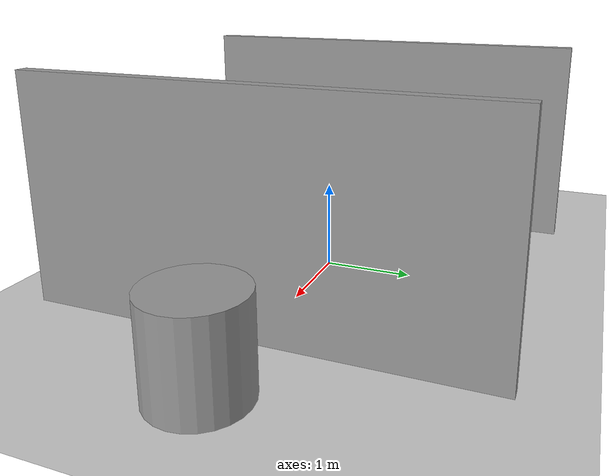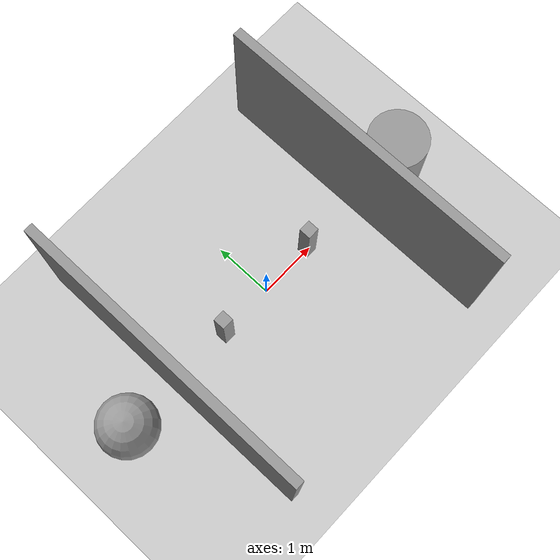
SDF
<sdf version="1.6">
 <world name="default">
  <light name="sun" type="directional">
   <pose>0 0 10 0 -0 0</pose>
   <diffuse>0.8 0.8 0.8 1</diffuse>
   <specular>0.1 0.1 0.1 1</specular>
   <attenuation>
    <range>1000</range>
    <constant>0.9</constant>
    <linear>0.01</linear>
    <quadratic>0.001</quadratic>
   </attenuation>
   <direction>-0.5 0.5 -1</direction>
  </light>
  <model name="ground_plane">
   <static>1</static>
   <link name="link">
    <collision name="collision">
     <geometry><plane><normal>0 0 1</normal><size>100 100</size></plane></geometry>
     <surface><friction><ode><mu>100</mu><mu2>50</mu2></ode></friction></surface>
    </collision>
    <visual name="visual">
     <cast_shadows>0</cast_shadows>
     <geometry><plane><normal>0 0 1</normal><size>100 100</size></plane></geometry>
     <material>
      <script><uri>file://media/materials/scripts/gazebo.material</uri><name>Gazebo/Grey</name></script>
     </material>
    </visual>
   </link>
  </model>
  <gravity>0 0 -9.8</gravity>
  <magnetic_field>6e-06 2.3e-05 -4.2e-05</magnetic_field>
  <atmosphere type="adiabatic"/>
  <physics name="default_physics" default="0" type="ode">
   <max_step_size>0.001</max_step_size>
   <real_time_factor>1</real_time_factor>
   <real_time_update_rate>1000</real_time_update_rate>
  </physics>
  <scene><ambient>0.4 0.4 0.4 1</ambient><background>0.7 0.7 0.7 1</background><shadows>1</shadows></scene>
  <spherical_coordinates>
   <surface_model>EARTH_WGS84</surface_model>
   <latitude_deg>0</latitude_deg>
   <longitude_deg>0</longitude_deg>
   <elevation>0</elevation>
   <heading_deg>0</heading_deg>
  </spherical_coordinates>
  <model name="kinects_box">
   <link name="link">
    <inertial>
     <mass>1</mass>
     <inertia>
      <ixx>0.166667</ixx>
      <ixy>0</ixy>
      <ixz>0</ixz>
      <iyy>0.166667</iyy>
      <iyz>0</iyz>
      <izz>0.166667</izz>
     </inertia>
    </inertial>
    <visual name="visual">
     <geometry><box><size>0.2 0.2 1</size></box></geometry>
     <material>
      <script><name>Gazebo/Grey</name><uri>file://media/materials/scripts/gazebo.material</uri></script>
      <ambient>0.3 0.3 0.3 1</ambient>
      <diffuse>0.7 0.7 0.7 1</diffuse>
      <specular>0.01 0.01 0.01 1</specular>
      <emissive>0 0 0 1</emissive>
      <shader type="vertex"><normal_map>__default__</normal_map></shader>
     </material>
    </visual>
    <collision name="collision">
     <geometry><box><size>0.2 0.2 1</size></box></geometry>
     <surface>
      <friction>
       <ode><mu>1</mu><mu2>1</mu2><fdir1>0 0 0</fdir1><slip1>0</slip1><slip2>0</slip2></ode>
       <torsional>
        <coefficient>1</coefficient>
        <patch_radius>0</patch_radius>
        <surface_radius>0</surface_radius>
        <use_patch_radius>1</use_patch_radius>
        <ode><slip>0</slip></ode>
       </torsional>
      </friction>
      <bounce><restitution_coefficient>0</restitution_coefficient><threshold>1e+06</threshold></bounce>
      <contact>
       <collide_without_contact>0</collide_without_contact>
       <collide_without_contact_bitmask>1</collide_without_contact_bitmask>
       <collide_bitmask>1</collide_bitmask>
       <ode>
        <soft_cfm>0</soft_cfm>
        <soft_erp>0.2</soft_erp>
        <kp>1e+13</kp>
        <kd>1</kd>
        <max_vel>0.01</max_vel>
        <min_depth>0</min_depth>
       </ode>
       <bullet>
        <split_impulse>1</split_impulse>
        <split_impulse_penetration_threshold>-0.01</split_impulse_penetration_threshold>
        <soft_cfm>0</soft_cfm>
        <soft_erp>0.2</soft_erp>
        <kp>1e+13</kp>
        <kd>1</kd>
       </bullet>
      </contact>
     </surface>
    </collision>
   </link>
   <static>0</static>
   <pose>-0.94327 -0.011746 0.499108 -2.5e-05 -3.7e-05 0.000113</pose>
  </model>
  <model name="kinects_box_0">
   <link name="link">
    <inertial>
     <mass>1</mass>
     <inertia>
      <ixx>0.166667</ixx>
      <ixy>0</ixy>
      <ixz>0</ixz>
      <iyy>0.166667</iyy>
      <iyz>0</iyz>
      <izz>0.166667</izz>
     </inertia>
    </inertial>
    <visual name="visual">
     <geometry><box><size>0.2 0.2 1</size></box></geometry>
     <material>
      <script><name>Gazebo/Grey</name><uri>file://media/materials/scripts/gazebo.material</uri></script>
      <ambient>0.3 0.3 0.3 1</ambient>
      <diffuse>0.7 0.7 0.7 1</diffuse>
      <specular>0.01 0.01 0.01 1</specular>
      <emissive>0 0 0 1</emissive>
      <shader type="vertex"><normal_map>__default__</normal_map></shader>
     </material>
    </visual>
    <collision name="collision">
     <geometry><box><size>0.2 0.2 1</size></box></geometry>
     <surface>
      <friction>
       <ode><mu>1</mu><mu2>1</mu2><fdir1>0 0 0</fdir1><slip1>0</slip1><slip2>0</slip2></ode>
       <torsional>
        <coefficient>1</coefficient>
        <patch_radius>0</patch_radius>
        <surface_radius>0</surface_radius>
        <use_patch_radius>1</use_patch_radius>
        <ode><slip>0</slip></ode>
       </torsional>
      </friction>
      <bounce><restitution_coefficient>0</restitution_coefficient><threshold>1e+06</threshold></bounce>
      <contact>
       <collide_without_contact>0</collide_without_contact>
       <collide_without_contact_bitmask>1</collide_without_contact_bitmask>
       <collide_bitmask>1</collide_bitmask>
       <ode>
        <soft_cfm>0</soft_cfm>
        <soft_erp>0.2</soft_erp>
        <kp>1e+13</kp>
        <kd>1</kd>
        <max_vel>0.01</max_vel>
        <min_depth>0</min_depth>
       </ode>
       <bullet>
        <split_impulse>1</split_impulse>
        <split_impulse_penetration_threshold>-0.01</split_impulse_penetration_threshold>
        <soft_cfm>0</soft_cfm>
        <soft_erp>0.2</soft_erp>
        <kp>1e+13</kp>
        <kd>1</kd>
       </bullet>
      </contact>
     </surface>
    </collision>
   </link>
   <static>0</static>
   <pose>0.950957 0.012329 0.5 -2e-06 -0 5.9e-05</pose>
  </model>
  <model name="unit_sphere_0">
   <pose>-3 0 0.5 0 -0 0</pose>
   <link name="link">
    <inertial>
     <mass>1</mass>
     <inertia><ixx>0.1</ixx><ixy>0</ixy><ixz>0</ixz><iyy>0.1</iyy><iyz>0</iyz><izz>0.1</izz></inertia>
    </inertial>
    <collision name="collision"><geometry><sphere><radius>0.5</radius></sphere></geometry></collision>
    <visual name="visual">
     <geometry><sphere><radius>0.5</radius></sphere></geometry>
     <material>
      <script><name>Gazebo/Grey</name><uri>file://media/materials/scripts/gazebo.material</uri></script>
     </material>
    </visual>
   </link>
  </model>
  <model name="unit_cylinder_0">
   <pose>3 1e-06 0.499992 -3e-06 3e-06 0</pose>
   <link name="link">
    <inertial>
     <mass>1</mass>
     <inertia><ixx>0.145833</ixx><ixy>0</ixy><ixz>0</ixz><iyy>0.145833</iyy><iyz>0</iyz><izz>0.125</izz></inertia>
    </inertial>
    <collision name="collision">
     <geometry><cylinder><radius>0.5</radius><length>1</length></cylinder></geometry>
    </collision>
    <visual name="visual">
     <geometry><cylinder><radius>0.5</radius><length>1</length></cylinder></geometry>
     <material>
      <script><name>Gazebo/Grey</name><uri>file://media/materials/scripts/gazebo.material</uri></script>
     </material>
    </visual>
   </link>
  </model>
  <model name="test">
   <pose>-0.001693 0 0.022218 0 -0 0</pose>
   <link name="Wall_0">
    <collision name="Wall_0_Collision">
     <geometry><box><size>5 0.15 2.5</size></box></geometry>
     <pose>0 0 1.25 0 -0 0</pose>
    </collision>
    <visual name="Wall_0_Visual">
     <pose>0 0 1.25 0 -0 0</pose>
     <geometry><box><size>5 0.15 2.5</size></box></geometry>
     <material>
      <script><uri>file://media/materials/scripts/gazebo.material</uri><name>Gazebo/Grey</name></script>
      <ambient>1 1 1 1</ambient>
     </material>
    </visual>
    <pose>2.0373 -0.008913 0 0 0 -1.5708</pose>
   </link>
   <link name="Wall_3">
    <collision name="Wall_3_Collision">
     <geometry><box><size>5 0.15 2.5</size></box></geometry>
     <pose>0 0 1.25 0 -0 0</pose>
    </collision>
    <visual name="Wall_3_Visual">
     <pose>0 0 1.25 0 -0 0</pose>
     <geometry><box><size>5 0.15 2.5</size></box></geometry>
     <material>
      <script><uri>file://media/materials/scripts/gazebo.material</uri><name>Gazebo/Grey</name></script>
      <ambient>1 1 1 1</ambient>
     </material>
    </visual>
    <pose>-2.0373 0.008913 0 0 -0 1.5708</pose>
   </link>
   <static>1</static>
  </model>
 </world>
</sdf>
